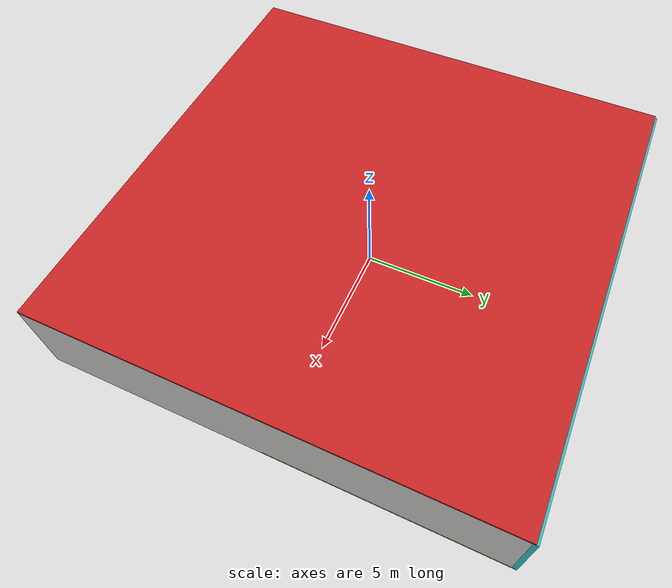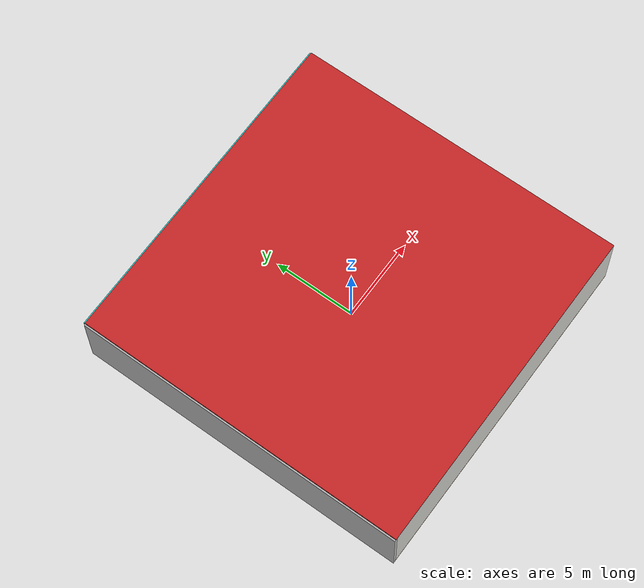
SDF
<sdf version="1.4">
 <world name="default">
  <physics type="ode">
   <max_step_size>0.001</max_step_size>
   <real_time_factor>1</real_time_factor>
   <real_time_update_rate>1000</real_time_update_rate>
   <gravity>0 0 -9.8</gravity>
  </physics>
  <scene><ambient>0.4 0.4 0.4 1</ambient><background>0.7 0.7 0.7 1</background><shadows>1</shadows></scene>
  <model name="Surrounding">
   <static>1</static>
   <link name="Ceiling">
    <collision name="Ceiling_Collision"><geometry><box><size>20 20 0.1</size></box></geometry></collision>
    <visual name="Ceiling_Visual">
     <geometry><box><size>20 20 0.1</size></box></geometry>
     <material>
      <script><uri>file://media/materials/scripts/gazebo.material</uri><name>Gazebo/Red</name></script>
     </material>
    </visual>
    <pose>0 0 4.05 0 0 0</pose>
   </link>
   <link name="Wall_South">
    <collision name="Wall_South_Collision">
     <geometry><box><size>20 0 4</size></box></geometry>
     <pose>0 0 2 0 -0 0</pose>
    </collision>
    <visual name="Wall_South_Visual">
     <pose>0 0 2 0 -0 0</pose>
     <geometry><box><size>20 0 4</size></box></geometry>
     <material>
      <script><uri>file://media/materials/scripts/gazebo.material</uri><name>Gazebo/CeilingTiled</name></script>
     </material>
    </visual>
    <velocity_decay><linear>0</linear><angular>0</angular></velocity_decay>
    <pose>0 -10 0 0 -0 0</pose>
   </link>
   <link name="Wall_East">
    <collision name="Wall_21_Collision">
     <geometry><box><size>20 0 4</size></box></geometry>
     <pose>0 0 2 0 -0 0</pose>
    </collision>
    <visual name="Wall_21_Visual">
     <pose>0 0 2 0 -0 0</pose>
     <geometry><box><size>20 0 4</size></box></geometry>
     <material>
      <script><uri>file://media/materials/scripts/gazebo.material</uri><name>Gazebo/CeilingTiled</name></script>
     </material>
    </visual>
    <velocity_decay><linear>0</linear><angular>0</angular></velocity_decay>
    <pose>10 0 0 0 -0 1.5708</pose>
   </link>
   <link name="Wall_North">
    <collision name="Wall_22_Collision">
     <geometry><box><size>20 0.2 4</size></box></geometry>
     <pose>0 0 2 0 -0 0</pose>
    </collision>
    <visual name="Wall_22_Visual">
     <pose>0 0 2 0 -0 0</pose>
     <geometry><box><size>20 0.2 4</size></box></geometry>
     <material>
      <script>
       <uri>file://media/materials/scripts/gazebo.material</uri>
       <name>Gazebo/TurquoiseGlowOutline</name>
      </script>
     </material>
    </visual>
    <velocity_decay><linear>0</linear><angular>0</angular></velocity_decay>
    <pose>0 10 0 0 -0 0</pose>
   </link>
   <link name="Wall_West">
    <collision name="Wall_23_Collision">
     <geometry><box><size>20 0.2 4</size></box></geometry>
     <pose>0 0 2 0 -0 0</pose>
    </collision>
    <visual name="Wall_23_Visual">
     <pose>0 0 2 0 -0 0</pose>
     <geometry><box><size>20 0.2 4</size></box></geometry>
     <material>
      <script><uri>file://media/materials/scripts/gazebo.material</uri><name>Gazebo/JointAnchor</name></script>
     </material>
    </visual>
    <velocity_decay><linear>0</linear><angular>0</angular></velocity_decay>
    <pose>-10 0 0 0 0 -1.5708</pose>
   </link>
   <link name="Ground_link">
    <collision name="collision">
     <pose>0 0 .05 0 -0 0</pose>
     <geometry><box><size>20 20 0.1</size></box></geometry>
    </collision>
    <visual name="visual">
     <pose>0 0 .05 0 -0 0</pose>
     <geometry><box><size>20 20 0.1</size></box></geometry>
     <material>
      <script>
       <uri>file://media/materials/scripts/gazebo.material</uri>
       <name>Gazebo/OrangeTransparent</name>
      </script>
     </material>
    </visual>
   </link>
   <static>1</static>
  </model>
  <spherical_coordinates>
   <surface_model>EARTH_WGS84</surface_model>
   <latitude_deg>0</latitude_deg>
   <longitude_deg>0</longitude_deg>
   <elevation>0</elevation>
   <heading_deg>0</heading_deg>
  </spherical_coordinates>
  <light name="lightball_0" type="diffuse">
   <diffuse>0.8 0.8 0.8 1</diffuse>
   <specular>0.2 0.2 0.2 1</specular>
   <attenuation>
    <range>100</range>
    <constant>0.7</constant>
    <linear>0.01</linear>
    <quadratic>0.001</quadratic>
   </attenuation>
   <direction>-0.5 0.1 -0.9</direction>
   <pose>9.02948806333 3.56541775104 0.95265849409 0 0 0</pose>
  </light>
  <light name="lightball_1" type="diffuse">
   <diffuse>0.8 0.8 0.8 1</diffuse>
   <specular>0.2 0.2 0.2 1</specular>
   <attenuation>
    <range>100</range>
    <constant>0.7</constant>
    <linear>0.01</linear>
    <quadratic>0.001</quadratic>
   </attenuation>
   <direction>-0.5 0.1 -0.9</direction>
   <pose>-9.05714429949 -0.627990011167 2.79937854936 0 0 0</pose>
  </light>
  <light name="lightball_2" type="diffuse">
   <diffuse>0.8 0.8 0.8 1</diffuse>
   <specular>0.2 0.2 0.2 1</specular>
   <attenuation>
    <range>100</range>
    <constant>0.7</constant>
    <linear>0.01</linear>
    <quadratic>0.001</quadratic>
   </attenuation>
   <direction>-0.5 0.1 -0.9</direction>
   <pose>-6.47690228859 4.31471203948 1.64824326188 0 0 0</pose>
  </light>
  <light name="lightball_3" type="diffuse">
   <diffuse>0.8 0.8 0.8 1</diffuse>
   <specular>0.2 0.2 0.2 1</specular>
   <attenuation>
    <range>100</range>
    <constant>0.7</constant>
    <linear>0.01</linear>
    <quadratic>0.001</quadratic>
   </attenuation>
   <direction>-0.5 0.1 -0.9</direction>
   <pose>8.39873728356 3.51894022824 1.55765370252 0 0 0</pose>
  </light>
  <light name="lightball_4" type="diffuse">
   <diffuse>0.8 0.8 0.8 1</diffuse>
   <specular>0.2 0.2 0.2 1</specular>
   <attenuation>
    <range>100</range>
    <constant>0.7</constant>
    <linear>0.01</linear>
    <quadratic>0.001</quadratic>
   </attenuation>
   <direction>-0.5 0.1 -0.9</direction>
   <pose>-1.41094253824 6.51888111903 3.62910607832 0 0 0</pose>
  </light>
  <light name="lightball_5" type="diffuse">
   <diffuse>0.8 0.8 0.8 1</diffuse>
   <specular>0.2 0.2 0.2 1</specular>
   <attenuation>
    <range>100</range>
    <constant>0.7</constant>
    <linear>0.01</linear>
    <quadratic>0.001</quadratic>
   </attenuation>
   <direction>-0.5 0.1 -0.9</direction>
   <pose>9.8879022243 7.8715896571 2.39547494463 0 0 0</pose>
  </light>
  <light name="lightball_6" type="diffuse">
   <diffuse>0.8 0.8 0.8 1</diffuse>
   <specular>0.2 0.2 0.2 1</specular>
   <attenuation>
    <range>100</range>
    <constant>0.7</constant>
    <linear>0.01</linear>
    <quadratic>0.001</quadratic>
   </attenuation>
   <direction>-0.5 0.1 -0.9</direction>
   <pose>-0.893318435659 -4.45169095592 1.79024824056 0 0 0</pose>
  </light>
  <light name="lightball_7" type="diffuse">
   <diffuse>0.8 0.8 0.8 1</diffuse>
   <specular>0.2 0.2 0.2 1</specular>
   <attenuation>
    <range>100</range>
    <constant>0.7</constant>
    <linear>0.01</linear>
    <quadratic>0.001</quadratic>
   </attenuation>
   <direction>-0.5 0.1 -0.9</direction>
   <pose>1.9588102958 -6.62043911051 3.84384473246 0 0 0</pose>
  </light>
  <light name="lightball_8" type="diffuse">
   <diffuse>0.8 0.8 0.8 1</diffuse>
   <specular>0.2 0.2 0.2 1</specular>
   <attenuation>
    <range>100</range>
    <constant>0.7</constant>
    <linear>0.01</linear>
    <quadratic>0.001</quadratic>
   </attenuation>
   <direction>-0.5 0.1 -0.9</direction>
   <pose>2.17243879667 5.61588166711 1.42492940425 0 0 0</pose>
  </light>
  <light name="lightball_9" type="diffuse">
   <diffuse>0.8 0.8 0.8 1</diffuse>
   <specular>0.2 0.2 0.2 1</specular>
   <attenuation>
    <range>100</range>
    <constant>0.7</constant>
    <linear>0.01</linear>
    <quadratic>0.001</quadratic>
   </attenuation>
   <direction>-0.5 0.1 -0.9</direction>
   <pose>5.57976327006 -6.86627487889 3.02169462022 0 0 0</pose>
  </light>
  <light name="lightball_10" type="diffuse">
   <diffuse>0.8 0.8 0.8 1</diffuse>
   <specular>0.2 0.2 0.2 1</specular>
   <attenuation>
    <range>100</range>
    <constant>0.7</constant>
    <linear>0.01</linear>
    <quadratic>0.001</quadratic>
   </attenuation>
   <direction>-0.5 0.1 -0.9</direction>
   <pose>6.70796687305 1.75900980303 1.55856997189 0 0 0</pose>
  </light>
  <light name="lightball_11" type="diffuse">
   <diffuse>0.8 0.8 0.8 1</diffuse>
   <specular>0.2 0.2 0.2 1</specular>
   <attenuation>
    <range>100</range>
    <constant>0.7</constant>
    <linear>0.01</linear>
    <quadratic>0.001</quadratic>
   </attenuation>
   <direction>-0.5 0.1 -0.9</direction>
   <pose>2.13214459886 0.0835920369161 2.28358843303 0 0 0</pose>
  </light>
  <light name="lightball_12" type="diffuse">
   <diffuse>0.8 0.8 0.8 1</diffuse>
   <specular>0.2 0.2 0.2 1</specular>
   <attenuation>
    <range>100</range>
    <constant>0.7</constant>
    <linear>0.01</linear>
    <quadratic>0.001</quadratic>
   </attenuation>
   <direction>-0.5 0.1 -0.9</direction>
   <pose>2.42505840978 4.98136421752 1.70023622778 0 0 0</pose>
  </light>
  <light name="lightball_13" type="diffuse">
   <diffuse>0.8 0.8 0.8 1</diffuse>
   <specular>0.2 0.2 0.2 1</specular>
   <attenuation>
    <range>100</range>
    <constant>0.7</constant>
    <linear>0.01</linear>
    <quadratic>0.001</quadratic>
   </attenuation>
   <direction>-0.5 0.1 -0.9</direction>
   <pose>8.65672033986 2.44979442829 3.01533324785 0 0 0</pose>
  </light>
  <include>
   <uri>model://construction_cone</uri>
   <pose>-7.49468691241 -7.36914861556 0 0 0 0.993249274804</pose>
  </include>
  <include><uri>model://cabinet</uri><pose>-8.25093531606 -1.56953129658 0 0 0 3.05877082995</pose></include>
  <include>
   <uri>model://textured_shapes</uri>
   <pose>-1.84419825759 0.862595617556 0 0 0 1.48350353647</pose>
  </include>
  <include>
   <uri>model://construction_cone</uri>
   <pose>-2.25150313027 6.72884102966 0 0 0 3.04592983011</pose>
  </include>
 </world>
</sdf>

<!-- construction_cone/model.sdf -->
<sdf version="1.5">
  <model name="Construction Cone">
    <link name="link">
      <collision name="collision">
        <geometry>
          <mesh>
            <scale>10 10 10</scale>
            <uri>file://isr-testbed/construction_cone/meshes/construction_cone.dae</uri>
          </mesh>
        </geometry>
      </collision>
      <visual name="visual">
        <geometry>
          <mesh>
            <scale>10 10 10</scale>
            <uri>file://isr-testbed/construction_cone/meshes/construction_cone.dae</uri>
          </mesh>
        </geometry>
      </visual>
    </link>
  </model>
</sdf>

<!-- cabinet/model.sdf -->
<sdf version="1.5">
  <model name="cabinet">
    <static>true</static>
    <link name="cabinet_bottom_plate">
      <inertial>
        <pose>0 0 -1 0 0 0</pose>
        <inertia>
          <ixx>2.050000</ixx>
          <ixy>0</ixy>
          <ixz>0</ixz>
          <iyy>2.050000</iyy>
          <iyz>0</iyz>
          <izz>2.050000</izz>
        </inertia>
        <mass>25.000000</mass>
      </inertial>
      <collision name="cabinet_bottom_plate_geom">
        <pose>0 0 0.010000 0 0 0</pose>
        <geometry>
          <box>
            <size>0.450000 0.450000 0.020000</size>
          </box>
        </geometry>
      </collision>
      <visual name="cabinet_bottom_plate_geom_visual">
        <pose>0 0 0.010000 0 0 0</pose>
        <geometry>
          <box>
            <size>0.450000 0.450000 0.020000</size>
          </box>
        </geometry>
        <material>
          <script>
            <uri>model://media/materials/scripts/gazebo.material</uri>
            <name>Gazebo/Wood</name>
          </script>
        </material>
      </visual>
      <collision name="cabinet_bottom_plate_geom_cabinet_back_plate">
        <pose>0.235000 0 0.510000 0 0 0</pose>
        <geometry>
          <box>
            <size>0.020000 0.450000 1.020000</size>
          </box>
        </geometry>
      </collision>
      <visual name="cabinet_bottom_plate_geom_cabinet_back_plate_visual">
        <pose>0.235000 0 0.510000 0 0 0</pose>
        <geometry>
          <box>
            <size>0.020000 0.450000 1.020000</size>
          </box>
        </geometry>
        <material>
          <script>
            <uri>model://media/materials/scripts/gazebo.material</uri>
            <name>Gazebo/Wood</name>
          </script>
        </material>
      </visual>
      <collision name="cabinet_bottom_plate_geom_cabinet_left_plate">
        <pose>0 0.235000 0.510000 0 0 0</pose>
        <geometry>
          <box>
            <size>0.450000 0.020000 1.020000</size>
          </box>
        </geometry>
      </collision>
      <visual name="cabinet_bottom_plate_geom_cabinet_left_plate_visual">
        <pose>0 0.235000 0.510000 0 0 0</pose>
        <geometry>
          <box>
            <size>0.450000 0.020000 1.020000</size>
          </box>
        </geometry>
        <material>
          <script>
            <uri>model://media/materials/scripts/gazebo.material</uri>
            <name>Gazebo/Wood</name>
          </script>
        </material>
      </visual>
      <collision name="cabinet_bottom_plate_geom_cabinet_middle_plate">
        <pose>0 0 0.510000 0 0 0</pose>
        <geometry>
          <box>
            <size>0.450000 0.450000 0.020000</size>
          </box>
        </geometry>
      </collision>
      <visual name="cabinet_bottom_plate_geom_cabinet_middle_plate_visual">
        <pose>0 0 0.510000 0 0 0</pose>
        <geometry>
          <box>
            <size>0.450000 0.450000 0.020000</size>
          </box>
        </geometry>
        <material>
          <script>
            <uri>model://media/materials/scripts/gazebo.material</uri>
            <name>Gazebo/Wood</name>
          </script>
        </material>
      </visual>
      <collision name="cabinet_bottom_plate_geom_cabinet_right_plate">
        <pose>0 -0.235000 0.510000 0 0 0</pose>
        <geometry>
          <box>
            <size>0.450000 0.020000 1.020000</size>
          </box>
        </geometry>
      </collision>
      <visual name="cabinet_bottom_plate_geom_cabinet_right_plate_visual">
        <pose>0 -0.235000 0.510000 0 0 0</pose>
        <geometry>
          <box>
            <size>0.450000 0.020000 1.020000</size>
          </box>
        </geometry>
        <material>
          <script>
            <uri>model://media/materials/scripts/gazebo.material</uri>
            <name>Gazebo/Wood</name>
          </script>
        </material>
      </visual>
      <collision name="cabinet_bottom_plate_geom_cabinet_top_plate">
        <pose>0 0 1.010000 0 0 0</pose>
        <geometry>
          <box>
            <size>0.450000 0.450000 0.020000</size>
          </box>
        </geometry>
      </collision>
      <visual name="cabinet_bottom_plate_geom_cabinet_top_plate_visual">
        <pose>0 0 1.010000 0 0 0</pose>
        <geometry>
          <box>
            <size>0.450000 0.450000 0.020000</size>
          </box>
        </geometry>
        <material>
          <script>
            <uri>model://media/materials/scripts/gazebo.material</uri>
            <name>Gazebo/Wood</name>
          </script>
        </material>
      </visual>
    </link>
  </model>
</sdf>

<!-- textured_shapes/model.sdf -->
<sdf version="1.6">
  <model name="textured_shapes">
    <pose>0 0 0.5 0 0 0</pose>
    <link name="box">
      <pose>0 -1.5 0 0 0 0</pose>
      <collision name="collision">
        <geometry>
          <box>
            <size>1 1 1</size>
          </box>
        </geometry>
      </collision>
      <visual name="visual">
        <geometry>
          <box>
            <size>1 1 1</size>
          </box>
        </geometry>
        <material>
          <script>
            <uri>model://../model_source/models/textured_shapes/materials/scripts</uri>
            <uri>model://../model_source/models/textured_shapes/materials/textures</uri>
            <name>TexturedShape/Squares</name>
          </script>
        </material>
      </visual>
    </link>
    <link name="sphere">
      <collision name="collision">
        <geometry>
          <sphere>
            <radius>0.5</radius>
          </sphere>
        </geometry>
      </collision>
      <visual name="visual">
        <geometry>
          <sphere>
            <radius>0.5</radius>
          </sphere>
        </geometry>
        <material>
          <script>
            <uri>model://../model_source/models/textured_shapes/materials/scripts</uri>
            <uri>model://../model_source/models/textured_shapes/materials/textures</uri>
            <name>TexturedShape/Squares</name>
          </script>
        </material>
      </visual>
    </link>
    <link name="cylinder">
      <pose>0 1.5 0 0 0 0</pose>
      <collision name="collision">
        <geometry>
          <cylinder>
            <radius>0.5</radius>
            <length>1</length>
          </cylinder>
        </geometry>
      </collision>
      <visual name="visual">
        <geometry>
          <cylinder>
            <radius>0.5</radius>
            <length>1</length>
          </cylinder>
        </geometry>
        <material>
          <script>
            <uri>model://../model_source/models/textured_shapes/materials/scripts</uri>
            <uri>model://../model_source/models/textured_shapes/materials/textures</uri>
            <name>TexturedShape/Squares</name>
          </script>
        </material>
      </visual>
    </link>
  </model>
</sdf>
